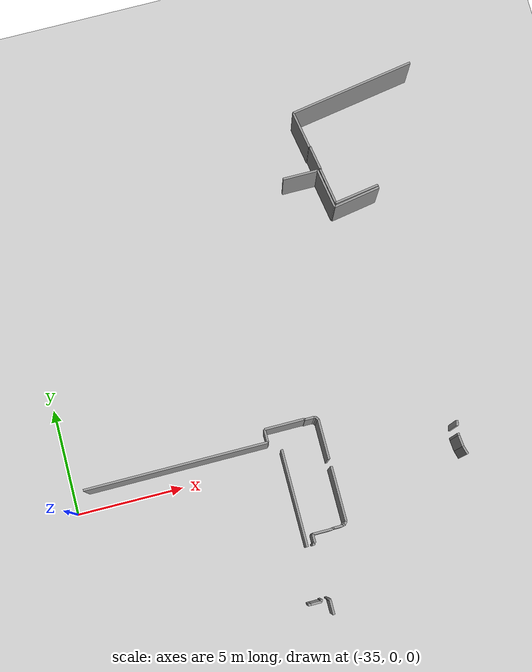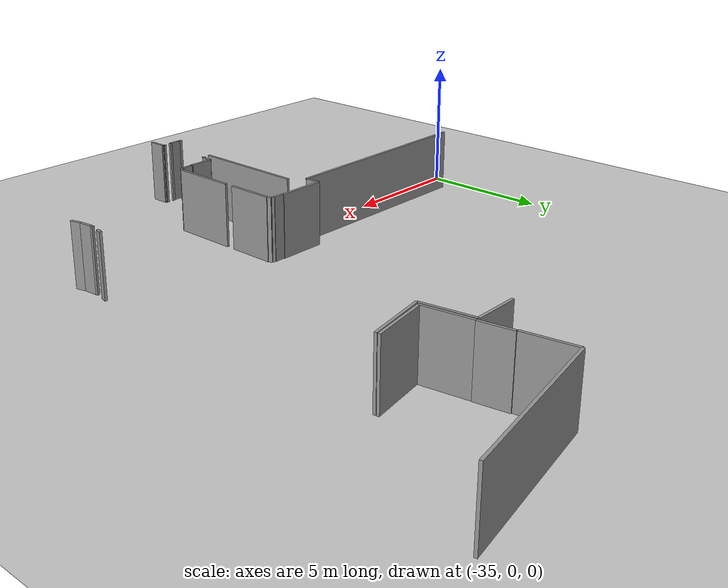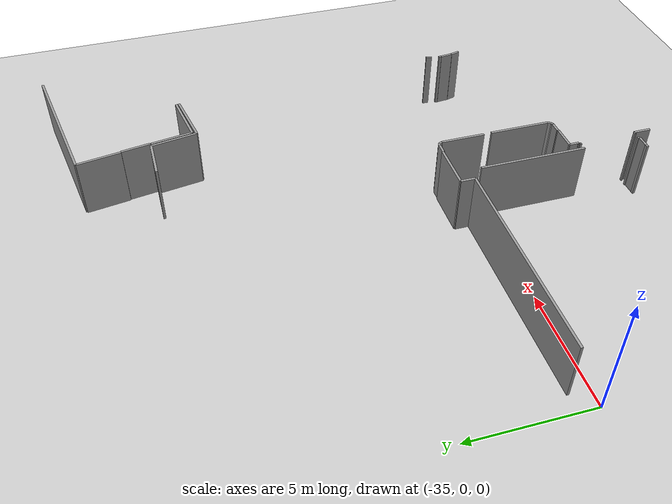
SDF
<sdf version="1.6">
 <world name="default">
  <model name="ground_plane">
   <static>1</static>
   <link name="link">
    <collision name="collision">
     <geometry><plane><normal>0 0 1</normal><size>100 100</size></plane></geometry>
     <surface><friction><ode><mu>100</mu><mu2>50</mu2></ode></friction></surface>
    </collision>
    <visual name="visual">
     <cast_shadows>0</cast_shadows>
     <geometry><plane><normal>0 0 1</normal><size>100 100</size></plane></geometry>
     <material>
      <script><uri>file://media/materials/scripts/gazebo.material</uri><name>Gazebo/Grey</name></script>
     </material>
    </visual>
   </link>
  </model>
  <model name="0510032261_A_40_1_103">
   <static>1</static>
   <link name="Wall_68">
    <collision name="Wall_68_Collision">
     <geometry><box><size>4.46581956798 0.1 2.5</size></box></geometry>
     <pose>2.23290978399 0 1.25 0 0 0</pose>
    </collision>
    <visual name="Wall_68_Visual">
     <pose>2.23290978399 0 1.25 0 0 0</pose>
     <geometry><box><size>4.46581956798 0.1 2.5</size></box></geometry>
     <material>
      <script><uri>file://media/materials/scripts/gazebo.material</uri><name>Gazebo/Grey</name></script>
      <ambient>1 1 1 1</ambient>
     </material>
    </visual>
    <pose>23.9461245235 -16.1523506989 0 0 0 -1.57079632679</pose>
   </link>
   <link name="Wall_69">
    <collision name="Wall_69_Collision">
     <geometry><box><size>0.0932655654384 0.1 2.5</size></box></geometry>
     <pose>0.0466327827192 0 1.25 0 0 0</pose>
    </collision>
    <visual name="Wall_69_Visual">
     <pose>0.0466327827192 0 1.25 0 0 0</pose>
     <geometry><box><size>0.0932655654384 0.1 2.5</size></box></geometry>
     <material>
      <script><uri>file://media/materials/scripts/gazebo.material</uri><name>Gazebo/Grey</name></script>
      <ambient>1 1 1 1</ambient>
     </material>
    </visual>
    <pose>23.9461245235 -22.9804320203 0 0 0 -1.57079632679</pose>
   </link>
   <link name="Wall_70">
    <collision name="Wall_70_Collision">
     <geometry><box><size>0.494663278272 0.1 2.5</size></box></geometry>
     <pose>0.247331639136 0 1.25 0 0 0</pose>
    </collision>
    <visual name="Wall_70_Visual">
     <pose>0.247331639136 0 1.25 0 0 0</pose>
     <geometry><box><size>0.494663278272 0.1 2.5</size></box></geometry>
     <material>
      <script><uri>file://media/materials/scripts/gazebo.material</uri><name>Gazebo/Grey</name></script>
      <ambient>1 1 1 1</ambient>
     </material>
    </visual>
    <pose>23.9461245235 -23.0736975858 0 0 0 3.14159265359</pose>
   </link>
   <link name="Wall_71">
    <collision name="Wall_71_Collision">
     <geometry><box><size>0.126302414231 0.1 2.5</size></box></geometry>
     <pose>0.0631512071156 0 1.25 0 0 0</pose>
    </collision>
    <visual name="Wall_71_Visual">
     <pose>0.0631512071156 0 1.25 0 0 0</pose>
     <geometry><box><size>0.126302414231 0.1 2.5</size></box></geometry>
     <material>
      <script><uri>file://media/materials/scripts/gazebo.material</uri><name>Gazebo/Grey</name></script>
      <ambient>1 1 1 1</ambient>
     </material>
    </visual>
    <pose>23.4514612452 -23.0736975858 0 0 0 3.14159265359</pose>
   </link>
   <link name="Wall_83">
    <collision name="Wall_83_Collision">
     <geometry><box><size>1.67191867853 0.1 2.5</size></box></geometry>
     <pose>0.835959339263 0 1.25 0 0 0</pose>
    </collision>
    <visual name="Wall_83_Visual">
     <pose>0.835959339263 0 1.25 0 0 0</pose>
     <geometry><box><size>1.67191867853 0.1 2.5</size></box></geometry>
     <material>
      <script><uri>file://media/materials/scripts/gazebo.material</uri><name>Gazebo/Grey</name></script>
      <ambient>1 1 1 1</ambient>
     </material>
    </visual>
    <pose>27.2144853875 -4.00635324015 0 0 0 0.0</pose>
   </link>
   <link name="Wall_84">
    <collision name="Wall_84_Collision">
     <geometry><box><size>1.91315334118 0.1 2.5</size></box></geometry>
     <pose>0.956576670588 0 1.25 0 0 0</pose>
    </collision>
    <visual name="Wall_84_Visual">
     <pose>0.956576670588 0 1.25 0 0 0</pose>
     <geometry><box><size>1.91315334118 0.1 2.5</size></box></geometry>
     <material>
      <script><uri>file://media/materials/scripts/gazebo.material</uri><name>Gazebo/Grey</name></script>
      <ambient>1 1 1 1</ambient>
     </material>
    </visual>
    <pose>28.8864040661 -4.00635324015 0 0 0 -1.40782049086</pose>
   </link>
   <link name="Wall_85">
    <collision name="Wall_85_Collision">
     <geometry><box><size>2.26966656097 0.1 2.5</size></box></geometry>
     <pose>1.13483328049 0 1.25 0 0 0</pose>
    </collision>
    <visual name="Wall_85_Visual">
     <pose>1.13483328049 0 1.25 0 0 0</pose>
     <geometry><box><size>2.26966656097 0.1 2.5</size></box></geometry>
     <material>
      <script><uri>file://media/materials/scripts/gazebo.material</uri><name>Gazebo/Grey</name></script>
      <ambient>1 1 1 1</ambient>
     </material>
    </visual>
    <pose>29.1968233799 -5.89415501906 0 0 0 0.172557721861</pose>
   </link>
   <link name="Wall_123">
    <collision name="Wall_123_Collision">
     <geometry><box><size>0.250862383722 0.1 2.5</size></box></geometry>
     <pose>0.125431191861 0 1.25 0 0 0</pose>
    </collision>
    <visual name="Wall_123_Visual">
     <pose>0.125431191861 0 1.25 0 0 0</pose>
     <geometry><box><size>0.250862383722 0.1 2.5</size></box></geometry>
     <material>
      <script><uri>file://media/materials/scripts/gazebo.material</uri><name>Gazebo/Grey</name></script>
      <ambient>1 1 1 1</ambient>
     </material>
    </visual>
    <pose>31.934815756 -16.8604828463 0 0 0 -1.78776216477</pose>
   </link>
   <link name="Wall_124">
    <collision name="Wall_124_Collision">
     <geometry><box><size>1.84040660737 0.1 2.5</size></box></geometry>
     <pose>0.920203303685 0 1.25 0 0 0</pose>
    </collision>
    <visual name="Wall_124_Visual">
     <pose>0.920203303685 0 1.25 0 0 0</pose>
     <geometry><box><size>1.84040660737 0.1 2.5</size></box></geometry>
     <material>
      <script><uri>file://media/materials/scripts/gazebo.material</uri><name>Gazebo/Grey</name></script>
      <ambient>1 1 1 1</ambient>
     </material>
    </visual>
    <pose>25.8893265565 -17.1054637865 0 0 0 1.57079632679</pose>
   </link>
   <link name="Wall_125">
    <collision name="Wall_125_Collision">
     <geometry><box><size>0.135455728683 0.1 2.5</size></box></geometry>
     <pose>0.0677278643417 0 1.25 0 0 0</pose>
    </collision>
    <visual name="Wall_125_Visual">
     <pose>0.0677278643417 0 1.25 0 0 0</pose>
     <geometry><box><size>0.135455728683 0.1 2.5</size></box></geometry>
     <material>
      <script><uri>file://media/materials/scripts/gazebo.material</uri><name>Gazebo/Grey</name></script>
      <ambient>1 1 1 1</ambient>
     </material>
    </visual>
    <pose>25.8893265565 -15.2650571792 0 0 0 2.10960707684</pose>
   </link>
   <link name="Wall_126">
    <collision name="Wall_126_Collision">
     <geometry><box><size>0.102595681749 0.1 2.5</size></box></geometry>
     <pose>0.0512978408747 0 1.25 0 0 0</pose>
    </collision>
    <visual name="Wall_126_Visual">
     <pose>0.0512978408747 0 1.25 0 0 0</pose>
     <geometry><box><size>0.102595681749 0.1 2.5</size></box></geometry>
     <material>
      <script><uri>file://media/materials/scripts/gazebo.material</uri><name>Gazebo/Grey</name></script>
      <ambient>1 1 1 1</ambient>
     </material>
    </visual>
    <pose>25.8198221093 -15.1487928844 0 0 0 2.76890580431</pose>
   </link>
   <link name="Wall_127">
    <collision name="Wall_127_Collision">
     <geometry><box><size>0.432020330368 0.1 2.5</size></box></geometry>
     <pose>0.216010165184 0 1.25 0 0 0</pose>
    </collision>
    <visual name="Wall_127_Visual">
     <pose>0.216010165184 0 1.25 0 0 0</pose>
     <geometry><box><size>0.432020330368 0.1 2.5</size></box></geometry>
     <material>
      <script><uri>file://media/materials/scripts/gazebo.material</uri><name>Gazebo/Grey</name></script>
      <ambient>1 1 1 1</ambient>
     </material>
    </visual>
    <pose>25.7242693774 -15.1114358323 0 0 0 3.14159265359</pose>
   </link>
   <link name="Wall_128">
    <collision name="Wall_128_Collision">
     <geometry><box><size>0.0290978398984 0.1 2.5</size></box></geometry>
     <pose>0.0145489199492 0 1.25 0 0 0</pose>
    </collision>
    <visual name="Wall_128_Visual">
     <pose>0.0145489199492 0 1.25 0 0 0</pose>
     <geometry><box><size>0.0290978398984 0.1 2.5</size></box></geometry>
     <material>
      <script><uri>file://media/materials/scripts/gazebo.material</uri><name>Gazebo/Grey</name></script>
      <ambient>1 1 1 1</ambient>
     </material>
    </visual>
    <pose>25.292249047 -15.1114358323 0 0 0 1.57079632679</pose>
   </link>
   <link name="Wall_129">
    <collision name="Wall_129_Collision">
     <geometry><box><size>1.86823379924 0.1 2.5</size></box></geometry>
     <pose>0.934116899619 0 1.25 0 0 0</pose>
    </collision>
    <visual name="Wall_129_Visual">
     <pose>0.934116899619 0 1.25 0 0 0</pose>
     <geometry><box><size>1.86823379924 0.1 2.5</size></box></geometry>
     <material>
      <script><uri>file://media/materials/scripts/gazebo.material</uri><name>Gazebo/Grey</name></script>
      <ambient>1 1 1 1</ambient>
     </material>
    </visual>
    <pose>25.292249047 -15.0823379924 0 0 0 3.14159265359</pose>
   </link>
   <link name="Wall_130">
    <collision name="Wall_130_Collision">
     <geometry><box><size>0.602795425667 0.1 2.5</size></box></geometry>
     <pose>0.301397712834 0 1.25 0 0 0</pose>
    </collision>
    <visual name="Wall_130_Visual">
     <pose>0.301397712834 0 1.25 0 0 0</pose>
     <geometry><box><size>0.602795425667 0.1 2.5</size></box></geometry>
     <material>
      <script><uri>file://media/materials/scripts/gazebo.material</uri><name>Gazebo/Grey</name></script>
      <ambient>1 1 1 1</ambient>
     </material>
    </visual>
    <pose>23.4240152478 -15.0823379924 0 0 0 -1.57079632679</pose>
   </link>
   <link name="Wall_131">
    <collision name="Wall_131_Collision">
     <geometry><box><size>8.53087674714 0.1 2.5</size></box></geometry>
     <pose>4.26543837357 0 1.25 0 0 0</pose>
    </collision>
    <visual name="Wall_131_Visual">
     <pose>4.26543837357 0 1.25 0 0 0</pose>
     <geometry><box><size>8.53087674714 0.1 2.5</size></box></geometry>
     <material>
      <script><uri>file://media/materials/scripts/gazebo.material</uri><name>Gazebo/Grey</name></script>
      <ambient>1 1 1 1</ambient>
     </material>
    </visual>
    <pose>23.4240152478 -15.685133418 0 0 0 3.14159265359</pose>
   </link>
   <link name="Wall_144">
    <collision name="Wall_144_Collision">
     <geometry><box><size>0.406099587635 0.1 2.5</size></box></geometry>
     <pose>0.203049793818 0 1.25 0 0 0</pose>
    </collision>
    <visual name="Wall_144_Visual">
     <pose>0.203049793818 0 1.25 0 0 0</pose>
     <geometry><box><size>0.406099587635 0.1 2.5</size></box></geometry>
     <material>
      <script><uri>file://media/materials/scripts/gazebo.material</uri><name>Gazebo/Grey</name></script>
      <ambient>1 1 1 1</ambient>
     </material>
    </visual>
    <pose>31.9756035578 -18.4510800508 0 0 0 1.83869491672</pose>
   </link>
   <link name="Wall_145">
    <collision name="Wall_145_Collision">
     <geometry><box><size>0.520493448216 0.1 2.5</size></box></geometry>
     <pose>0.260246724108 0 1.25 0 0 0</pose>
    </collision>
    <visual name="Wall_145_Visual">
     <pose>0.260246724108 0 1.25 0 0 0</pose>
     <geometry><box><size>0.520493448216 0.1 2.5</size></box></geometry>
     <material>
      <script><uri>file://media/materials/scripts/gazebo.material</uri><name>Gazebo/Grey</name></script>
      <ambient>1 1 1 1</ambient>
     </material>
    </visual>
    <pose>31.8681067344 -18.0594663278 0 0 0 1.6678658159</pose>
   </link>
   <link name="Wall_146">
    <collision name="Wall_146_Collision">
     <geometry><box><size>0.107369758577 0.1 2.5</size></box></geometry>
     <pose>0.0536848792884 0 1.25 0 0 0</pose>
    </collision>
    <visual name="Wall_146_Visual">
     <pose>0.0536848792884 0 1.25 0 0 0</pose>
     <geometry><box><size>0.107369758577 0.1 2.5</size></box></geometry>
     <material>
      <script><uri>file://media/materials/scripts/gazebo.material</uri><name>Gazebo/Grey</name></script>
      <ambient>1 1 1 1</ambient>
     </material>
    </visual>
    <pose>31.8176620076 -17.5414231258 0 0 0 1.57079632679</pose>
   </link>
   <link name="Wall_147">
    <collision name="Wall_147_Collision">
     <geometry><box><size>2.5289707751 0.1 2.5</size></box></geometry>
     <pose>1.26448538755 0 1.25 0 0 0</pose>
    </collision>
    <visual name="Wall_147_Visual">
     <pose>1.26448538755 0 1.25 0 0 0</pose>
     <geometry><box><size>2.5289707751 0.1 2.5</size></box></geometry>
     <material>
      <script><uri>file://media/materials/scripts/gazebo.material</uri><name>Gazebo/Grey</name></script>
      <ambient>1 1 1 1</ambient>
     </material>
    </visual>
    <pose>25.9036848793 -17.4340533672 0 0 0 -1.57079632679</pose>
   </link>
   <link name="Wall_148">
    <collision name="Wall_148_Collision">
     <geometry><box><size>0.151723036847 0.1 2.5</size></box></geometry>
     <pose>0.0758615184234 0 1.25 0 0 0</pose>
    </collision>
    <visual name="Wall_148_Visual">
     <pose>0.0758615184234 0 1.25 0 0 0</pose>
     <geometry><box><size>0.151723036847 0.1 2.5</size></box></geometry>
     <material>
      <script><uri>file://media/materials/scripts/gazebo.material</uri><name>Gazebo/Grey</name></script>
      <ambient>1 1 1 1</ambient>
     </material>
    </visual>
    <pose>25.9036848793 -19.9630241423 0 0 0 -2.22434734848</pose>
   </link>
   <link name="Wall_149">
    <collision name="Wall_149_Collision">
     <geometry><box><size>0.0866303375538 0.1 2.5</size></box></geometry>
     <pose>0.0433151687769 0 1.25 0 0 0</pose>
    </collision>
    <visual name="Wall_149_Visual">
     <pose>0.0433151687769 0 1.25 0 0 0</pose>
     <geometry><box><size>0.0866303375538 0.1 2.5</size></box></geometry>
     <material>
      <script><uri>file://media/materials/scripts/gazebo.material</uri><name>Gazebo/Grey</name></script>
      <ambient>1 1 1 1</ambient>
     </material>
    </visual>
    <pose>25.8114358323 -20.0834815756 0 0 0 -2.84999537021</pose>
   </link>
   <link name="Wall_150">
    <collision name="Wall_150_Collision">
     <geometry><box><size>0.427954256671 0.1 2.5</size></box></geometry>
     <pose>0.213977128335 0 1.25 0 0 0</pose>
    </collision>
    <visual name="Wall_150_Visual">
     <pose>0.213977128335 0 1.25 0 0 0</pose>
     <geometry><box><size>0.427954256671 0.1 2.5</size></box></geometry>
     <material>
      <script><uri>file://media/materials/scripts/gazebo.material</uri><name>Gazebo/Grey</name></script>
      <ambient>1 1 1 1</ambient>
     </material>
    </visual>
    <pose>25.7284625159 -20.108386277 0 0 0 3.14159265359</pose>
   </link>
   <link name="Wall_151">
    <collision name="Wall_151_Collision">
     <geometry><box><size>0.0483334201383 0.1 2.5</size></box></geometry>
     <pose>0.0241667100692 0 1.25 0 0 0</pose>
    </collision>
    <visual name="Wall_151_Visual">
     <pose>0.0241667100692 0 1.25 0 0 0</pose>
     <geometry><box><size>0.0483334201383 0.1 2.5</size></box></geometry>
     <material>
      <script><uri>file://media/materials/scripts/gazebo.material</uri><name>Gazebo/Grey</name></script>
      <ambient>1 1 1 1</ambient>
     </material>
    </visual>
    <pose>25.3005082592 -20.108386277 0 0 0 -2.60027144031</pose>
   </link>
   <link name="Wall_152">
    <collision name="Wall_152_Collision">
     <geometry><box><size>0.941296060991 0.1 2.5</size></box></geometry>
     <pose>0.470648030496 0 1.25 0 0 0</pose>
    </collision>
    <visual name="Wall_152_Visual">
     <pose>0.470648030496 0 1.25 0 0 0</pose>
     <geometry><box><size>0.941296060991 0.1 2.5</size></box></geometry>
     <material>
      <script><uri>file://media/materials/scripts/gazebo.material</uri><name>Gazebo/Grey</name></script>
      <ambient>1 1 1 1</ambient>
     </material>
    </visual>
    <pose>25.2590851334 -20.1332909784 0 0 0 3.14159265359</pose>
   </link>
   <link name="Wall_153">
    <collision name="Wall_153_Collision">
     <geometry><box><size>0.399491740788 0.1 2.5</size></box></geometry>
     <pose>0.199745870394 0 1.25 0 0 0</pose>
    </collision>
    <visual name="Wall_153_Visual">
     <pose>0.199745870394 0 1.25 0 0 0</pose>
     <geometry><box><size>0.399491740788 0.1 2.5</size></box></geometry>
     <material>
      <script><uri>file://media/materials/scripts/gazebo.material</uri><name>Gazebo/Grey</name></script>
      <ambient>1 1 1 1</ambient>
     </material>
    </visual>
    <pose>24.3177890724 -20.1332909784 0 0 0 -1.57079632679</pose>
   </link>
   <link name="Wall_154">
    <collision name="Wall_154_Collision">
     <geometry><box><size>0.07166454892 0.1 2.5</size></box></geometry>
     <pose>0.03583227446 0 1.25 0 0 0</pose>
    </collision>
    <visual name="Wall_154_Visual">
     <pose>0.03583227446 0 1.25 0 0 0</pose>
     <geometry><box><size>0.07166454892 0.1 2.5</size></box></geometry>
     <material>
      <script><uri>file://media/materials/scripts/gazebo.material</uri><name>Gazebo/Grey</name></script>
      <ambient>1 1 1 1</ambient>
     </material>
    </visual>
    <pose>24.3177890724 -20.5327827192 0 0 0 3.14159265359</pose>
   </link>
   <link name="Wall_155">
    <collision name="Wall_155_Collision">
     <geometry><box><size>0.0954256670902 0.1 2.5</size></box></geometry>
     <pose>0.0477128335451 0 1.25 0 0 0</pose>
    </collision>
    <visual name="Wall_155_Visual">
     <pose>0.0477128335451 0 1.25 0 0 0</pose>
     <geometry><box><size>0.0954256670902 0.1 2.5</size></box></geometry>
     <material>
      <script><uri>file://media/materials/scripts/gazebo.material</uri><name>Gazebo/Grey</name></script>
      <ambient>1 1 1 1</ambient>
     </material>
    </visual>
    <pose>24.2461245235 -20.5327827192 0 0 0 -1.57079632679</pose>
   </link>
   <link name="Wall_156">
    <collision name="Wall_156_Collision">
     <geometry><box><size>0.0653113087675 0.1 2.5</size></box></geometry>
     <pose>0.0326556543837 0 1.25 0 0 0</pose>
    </collision>
    <visual name="Wall_156_Visual">
     <pose>0.0326556543837 0 1.25 0 0 0</pose>
     <geometry><box><size>0.0653113087675 0.1 2.5</size></box></geometry>
     <material>
      <script><uri>file://media/materials/scripts/gazebo.material</uri><name>Gazebo/Grey</name></script>
      <ambient>1 1 1 1</ambient>
     </material>
    </visual>
    <pose>24.2461245235 -22.9930114358 0 0 0 -1.57079632679</pose>
   </link>
   <link name="Wall_157">
    <collision name="Wall_157_Collision">
     <geometry><box><size>0.0736975857687 0.1 2.5</size></box></geometry>
     <pose>0.0368487928844 0 1.25 0 0 0</pose>
    </collision>
    <visual name="Wall_157_Visual">
     <pose>0.0368487928844 0 1.25 0 0 0</pose>
     <geometry><box><size>0.0736975857687 0.1 2.5</size></box></geometry>
     <material>
      <script><uri>file://media/materials/scripts/gazebo.material</uri><name>Gazebo/Grey</name></script>
      <ambient>1 1 1 1</ambient>
     </material>
    </visual>
    <pose>24.2461245235 -23.0583227446 0 0 0 0.0</pose>
   </link>
   <link name="Wall_158">
    <collision name="Wall_158_Collision">
     <geometry><box><size>0.697458703939 0.1 2.5</size></box></geometry>
     <pose>0.34872935197 0 1.25 0 0 0</pose>
    </collision>
    <visual name="Wall_158_Visual">
     <pose>0.34872935197 0 1.25 0 0 0</pose>
     <geometry><box><size>0.697458703939 0.1 2.5</size></box></geometry>
     <material>
      <script><uri>file://media/materials/scripts/gazebo.material</uri><name>Gazebo/Grey</name></script>
      <ambient>1 1 1 1</ambient>
     </material>
    </visual>
    <pose>24.3198221093 -23.0583227446 0 0 0 -1.57079632679</pose>
   </link>
   <link name="Wall_673">
    <collision name="Wall_673_Collision">
     <geometry><box><size>1.75932634175 0.1 2.5</size></box></geometry>
     <pose>0.879663170877 0 1.25 0 0 0</pose>
    </collision>
    <visual name="Wall_673_Visual">
     <pose>0.879663170877 0 1.25 0 0 0</pose>
     <geometry><box><size>1.75932634175 0.1 2.5</size></box></geometry>
     <material>
      <script><uri>file://media/materials/scripts/gazebo.material</uri><name>Gazebo/Grey</name></script>
      <ambient>1 1 1 1</ambient>
     </material>
    </visual>
    <pose>29.2923761118 -5.72808132147 0 0 0 1.73036443996</pose>
   </link>
   <link name="Wall_674">
    <collision name="Wall_674_Collision">
     <geometry><box><size>0.0184156312674 0.1 2.5</size></box></geometry>
     <pose>0.00920781563368 0 1.25 0 0 0</pose>
    </collision>
    <visual name="Wall_674_Visual">
     <pose>0.00920781563368 0 1.25 0 0 0</pose>
     <geometry><box><size>0.0184156312674 0.1 2.5</size></box></geometry>
     <material>
      <script><uri>file://media/materials/scripts/gazebo.material</uri><name>Gazebo/Grey</name></script>
      <ambient>1 1 1 1</ambient>
     </material>
    </visual>
    <pose>29.0128335451 -3.99110546379 0 0 0 0.201455077469</pose>
   </link>
   <link name="Wall_675">
    <collision name="Wall_675_Collision">
     <geometry><box><size>1.1976699993 0.1 2.5</size></box></geometry>
     <pose>0.598834999648 0 1.25 0 0 0</pose>
    </collision>
    <visual name="Wall_675_Visual">
     <pose>0.598834999648 0 1.25 0 0 0</pose>
     <geometry><box><size>1.1976699993 0.1 2.5</size></box></geometry>
     <material>
      <script><uri>file://media/materials/scripts/gazebo.material</uri><name>Gazebo/Grey</name></script>
      <ambient>1 1 1 1</ambient>
     </material>
    </visual>
    <pose>29.0308767471 -3.9874205845 0 0 0 1.73749731049</pose>
   </link>
   <link name="Wall_676">
    <collision name="Wall_676_Collision">
     <geometry><box><size>0.0325285895807 0.1 2.5</size></box></geometry>
     <pose>0.0162642947903 0 1.25 0 0 0</pose>
    </collision>
    <visual name="Wall_676_Visual">
     <pose>0.0162642947903 0 1.25 0 0 0</pose>
     <geometry><box><size>0.0325285895807 0.1 2.5</size></box></geometry>
     <material>
      <script><uri>file://media/materials/scripts/gazebo.material</uri><name>Gazebo/Grey</name></script>
      <ambient>1 1 1 1</ambient>
     </material>
    </visual>
    <pose>28.8321473952 -2.80635324015 0 0 0 3.14159265359</pose>
   </link>
   <link name="Wall_677">
    <collision name="Wall_677_Collision">
     <geometry><box><size>1.81288089432 0.1 2.5</size></box></geometry>
     <pose>0.90644044716 0 1.25 0 0 0</pose>
    </collision>
    <visual name="Wall_677_Visual">
     <pose>0.90644044716 0 1.25 0 0 0</pose>
     <geometry><box><size>1.81288089432 0.1 2.5</size></box></geometry>
     <material>
      <script><uri>file://media/materials/scripts/gazebo.material</uri><name>Gazebo/Grey</name></script>
      <ambient>1 1 1 1</ambient>
     </material>
    </visual>
    <pose>28.7996188056 -2.80635324015 0 0 0 1.73690139039</pose>
   </link>
   <link name="Wall_678">
    <collision name="Wall_678_Collision">
     <geometry><box><size>6.06665271975 0.1 2.5</size></box></geometry>
     <pose>3.03332635987 0 1.25 0 0 0</pose>
    </collision>
    <visual name="Wall_678_Visual">
     <pose>3.03332635987 0 1.25 0 0 0</pose>
     <geometry><box><size>6.06665271975 0.1 2.5</size></box></geometry>
     <material>
      <script><uri>file://media/materials/scripts/gazebo.material</uri><name>Gazebo/Grey</name></script>
      <ambient>1 1 1 1</ambient>
     </material>
    </visual>
    <pose>28.4998729352 -1.01842439644 0 0 0 0.16867118391</pose>
   </link>
   <link name="Wall_684">
    <collision name="Wall_684_Collision">
     <geometry><box><size>2.15379500161 0.1 2.5</size></box></geometry>
     <pose>1.07689750081 0 1.25 0 0 0</pose>
    </collision>
    <visual name="Wall_684_Visual">
     <pose>1.07689750081 0 1.25 0 0 0</pose>
     <geometry><box><size>2.15379500161 0.1 2.5</size></box></geometry>
     <material>
      <script><uri>file://media/materials/scripts/gazebo.material</uri><name>Gazebo/Grey</name></script>
      <ambient>1 1 1 1</ambient>
     </material>
    </visual>
    <pose>31.4190597205 -5.3874205845 0 0 0 -2.98275796654</pose>
   </link>
   <pose>-49.15 16.5314485388 0 0 0 0</pose>
  </model>
 </world>
</sdf>
